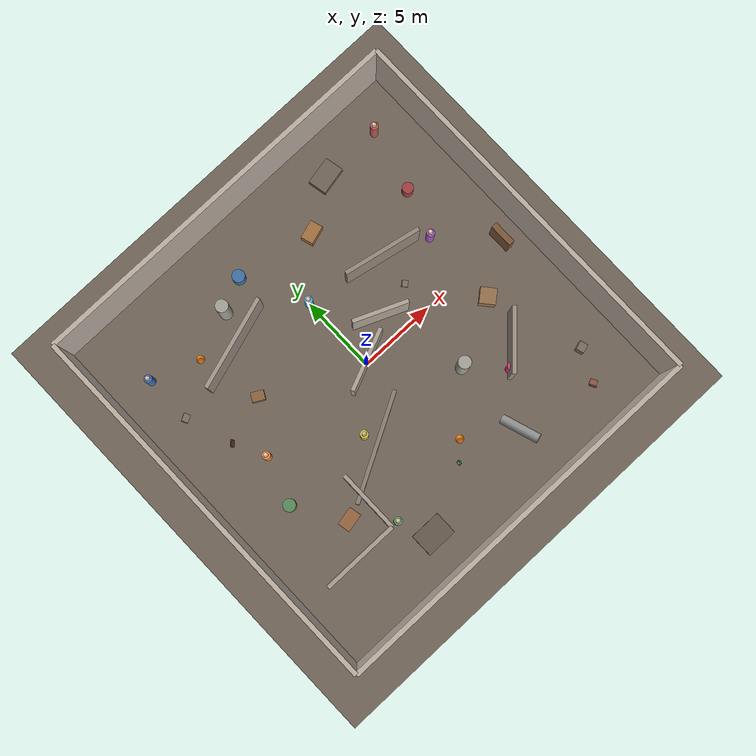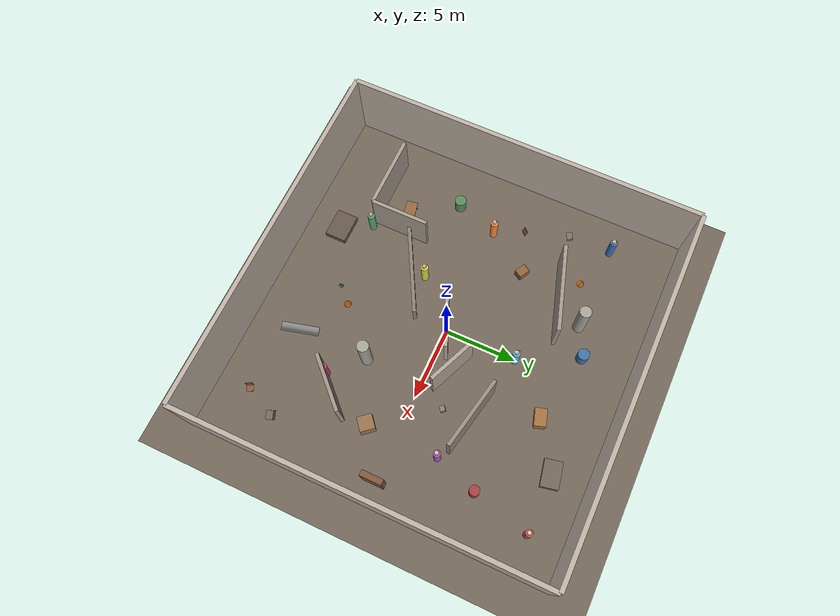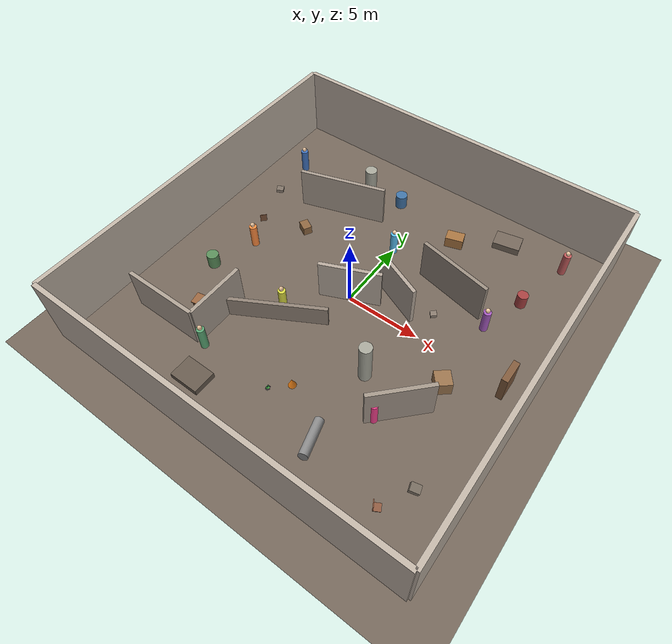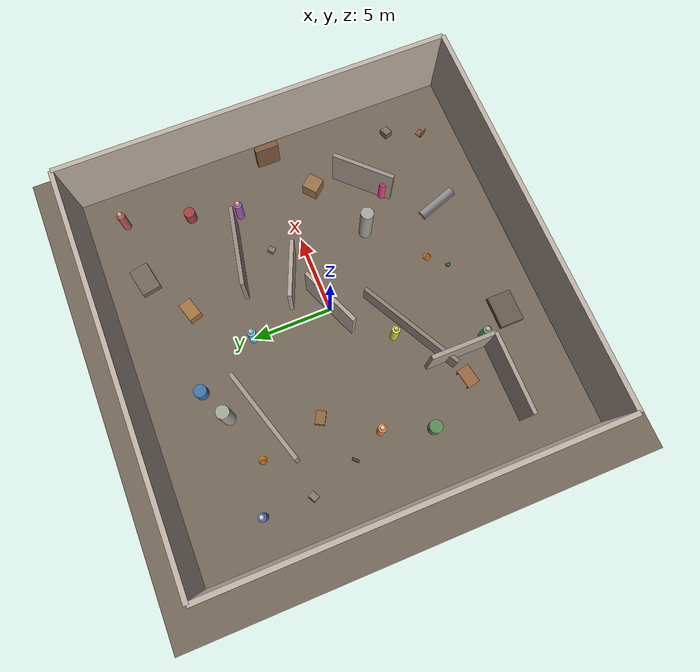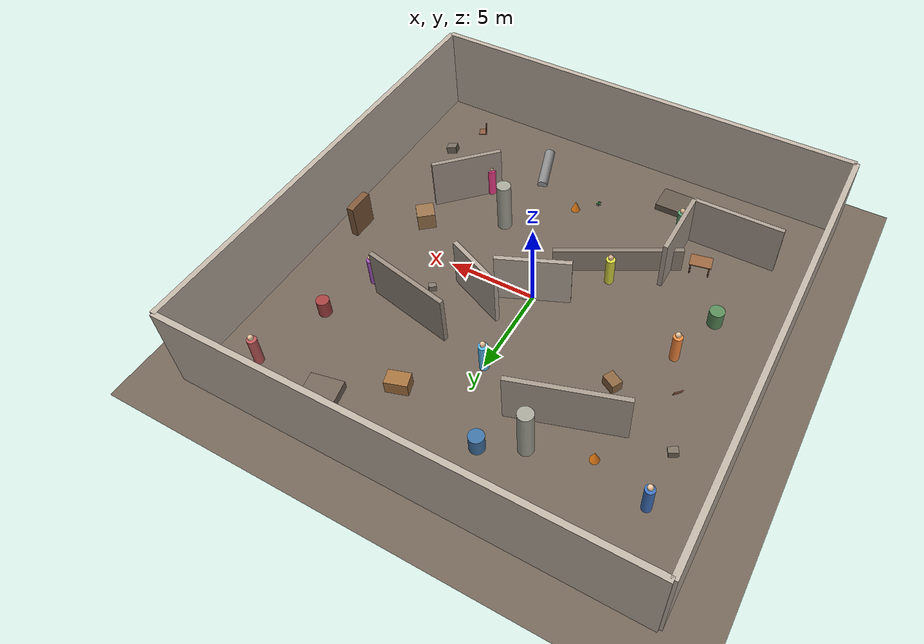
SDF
<?xml version="1.0" ?>
<sdf version="1.6">
  <world name="large_messy_room">
    <!-- Required plugins for Gazebo Sim -->
    <plugin filename="gz-sim-physics-system" name="gz::sim::systems::Physics"/>
    <plugin filename="gz-sim-user-commands-system" name="gz::sim::systems::UserCommands"/>
    <plugin filename="gz-sim-scene-broadcaster-system" name="gz::sim::systems::SceneBroadcaster"/>
    <plugin filename="gz-sim-sensors-system" name="gz::sim::systems::Sensors">
      <render_engine>ogre2</render_engine>
    </plugin>
    <plugin filename="gz-sim-contact-system" name="gz::sim::systems::Contact"/>

    <scene>
      <ambient>0.5 0.5 0.5 1</ambient>
      <background>0.3 0.3 0.4 1</background>
      <shadows>true</shadows>
    </scene>

    <light name="ceiling_light_1" type="point">
      <pose>0 0 4.5 0 0 0</pose>
      <diffuse>0.9 0.9 0.8 1</diffuse>
      <specular>0.3 0.3 0.3 1</specular>
      <attenuation>
        <range>30</range>
        <constant>0.3</constant>
        <linear>0.01</linear>
        <quadratic>0.001</quadratic>
      </attenuation>
      <cast_shadows>true</cast_shadows>
    </light>

    <light name="ceiling_light_2" type="point">
      <pose>8 8 4.5 0 0 0</pose>
      <diffuse>0.8 0.8 0.7 1</diffuse>
      <specular>0.2 0.2 0.2 1</specular>
      <attenuation>
        <range>25</range>
        <constant>0.3</constant>
        <linear>0.01</linear>
        <quadratic>0.001</quadratic>
      </attenuation>
    </light>

    <light name="ceiling_light_3" type="point">
      <pose>-8 -8 4.5 0 0 0</pose>
      <diffuse>0.8 0.8 0.7 1</diffuse>
      <specular>0.2 0.2 0.2 1</specular>
      <attenuation>
        <range>25</range>
        <constant>0.3</constant>
        <linear>0.01</linear>
        <quadratic>0.001</quadratic>
      </attenuation>
    </light>

    <physics type="ode">
      <max_step_size>0.001</max_step_size>
      <real_time_factor>1.0</real_time_factor>
      <real_time_update_rate>1000</real_time_update_rate>
    </physics>

    <!-- ==================== FLOOR ==================== -->
    <model name="floor">
      <static>true</static>
      <link name="link">
        <collision name="collision">
          <geometry>
            <plane>
              <normal>0 0 1</normal>
              <size>30 30</size>
            </plane>
          </geometry>
        </collision>
        <visual name="visual">
          <geometry>
            <plane>
              <normal>0 0 1</normal>
              <size>30 30</size>
            </plane>
          </geometry>
          <material>
            <ambient>0.4 0.35 0.3 1</ambient>
            <diffuse>0.45 0.4 0.35 1</diffuse>
            <specular>0.1 0.1 0.1 1</specular>
          </material>
        </visual>
      </link>
    </model>

    <!-- ==================== MAIN ROOM WALLS (25m x 25m) ==================== -->
    <!-- North Wall -->
    <model name="wall_north">
      <static>true</static>
      <link name="link">
        <pose>0 12.5 2.5 0 0 0</pose>
        <collision name="collision">
          <geometry>
            <box><size>25 0.3 5</size></box>
          </geometry>
        </collision>
        <visual name="visual">
          <geometry>
            <box><size>25 0.3 5</size></box>
          </geometry>
          <material>
            <ambient>0.7 0.65 0.6 1</ambient>
            <diffuse>0.75 0.7 0.65 1</diffuse>
          </material>
        </visual>
      </link>
    </model>

    <!-- South Wall -->
    <model name="wall_south">
      <static>true</static>
      <link name="link">
        <pose>0 -12.5 2.5 0 0 0</pose>
        <collision name="collision">
          <geometry>
            <box><size>25 0.3 5</size></box>
          </geometry>
        </collision>
        <visual name="visual">
          <geometry>
            <box><size>25 0.3 5</size></box>
          </geometry>
          <material>
            <ambient>0.7 0.65 0.6 1</ambient>
            <diffuse>0.75 0.7 0.65 1</diffuse>
          </material>
        </visual>
      </link>
    </model>

    <!-- East Wall -->
    <model name="wall_east">
      <static>true</static>
      <link name="link">
        <pose>12.5 0 2.5 0 0 0</pose>
        <collision name="collision">
          <geometry>
            <box><size>0.3 25 5</size></box>
          </geometry>
        </collision>
        <visual name="visual">
          <geometry>
            <box><size>0.3 25 5</size></box>
          </geometry>
          <material>
            <ambient>0.7 0.65 0.6 1</ambient>
            <diffuse>0.75 0.7 0.65 1</diffuse>
          </material>
        </visual>
      </link>
    </model>

    <!-- West Wall -->
    <model name="wall_west">
      <static>true</static>
      <link name="link">
        <pose>-12.5 0 2.5 0 0 0</pose>
        <collision name="collision">
          <geometry>
            <box><size>0.3 25 5</size></box>
          </geometry>
        </collision>
        <visual name="visual">
          <geometry>
            <box><size>0.3 25 5</size></box>
          </geometry>
          <material>
            <ambient>0.7 0.65 0.6 1</ambient>
            <diffuse>0.75 0.7 0.65 1</diffuse>
          </material>
        </visual>
      </link>
    </model>

    <!-- ==================== MESSY INTERNAL WALLS ==================== -->
    <!-- Partial wall 1 - angled -->
    <model name="messy_wall_1">
      <static>true</static>
      <link name="link">
        <pose>-5 6 1.5 0 0 0.3</pose>
        <collision name="collision">
          <geometry>
            <box><size>6 0.25 3</size></box>
          </geometry>
        </collision>
        <visual name="visual">
          <geometry>
            <box><size>6 0.25 3</size></box>
          </geometry>
          <material>
            <ambient>0.6 0.55 0.5 1</ambient>
            <diffuse>0.65 0.6 0.55 1</diffuse>
          </material>
        </visual>
      </link>
    </model>

    <!-- Partial wall 2 - broken section -->
    <model name="messy_wall_2">
      <static>true</static>
      <link name="link">
        <pose>5 4 1.5 0 0 -0.2</pose>
        <collision name="collision">
          <geometry>
            <box><size>5 0.25 3</size></box>
          </geometry>
        </collision>
        <visual name="visual">
          <geometry>
            <box><size>5 0.25 3</size></box>
          </geometry>
          <material>
            <ambient>0.55 0.5 0.45 1</ambient>
            <diffuse>0.6 0.55 0.5 1</diffuse>
          </material>
        </visual>
      </link>
    </model>

    <!-- Partial wall 3 - low wall -->
    <model name="messy_wall_3">
      <static>true</static>
      <link name="link">
        <pose>-3 -4 0.75 0 0 0.5</pose>
        <collision name="collision">
          <geometry>
            <box><size>7 0.25 1.5</size></box>
          </geometry>
        </collision>
        <visual name="visual">
          <geometry>
            <box><size>7 0.25 1.5</size></box>
          </geometry>
          <material>
            <ambient>0.5 0.45 0.4 1</ambient>
            <diffuse>0.55 0.5 0.45 1</diffuse>
          </material>
        </visual>
      </link>
    </model>

    <!-- Partial wall 4 -->
    <model name="messy_wall_4">
      <static>true</static>
      <link name="link">
        <pose>7 -5 1.5 0 0 0.8</pose>
        <collision name="collision">
          <geometry>
            <box><size>4 0.25 3</size></box>
          </geometry>
        </collision>
        <visual name="visual">
          <geometry>
            <box><size>4 0.25 3</size></box>
          </geometry>
          <material>
            <ambient>0.58 0.53 0.48 1</ambient>
            <diffuse>0.63 0.58 0.53 1</diffuse>
          </material>
        </visual>
      </link>
    </model>

    <!-- Partial wall 5 - L-shape part 1 -->
    <model name="messy_wall_5a">
      <static>true</static>
      <link name="link">
        <pose>-8 -8 1.5 0 0 0</pose>
        <collision name="collision">
          <geometry>
            <box><size>5 0.25 3</size></box>
          </geometry>
        </collision>
        <visual name="visual">
          <geometry>
            <box><size>5 0.25 3</size></box>
          </geometry>
          <material>
            <ambient>0.62 0.57 0.52 1</ambient>
            <diffuse>0.67 0.62 0.57 1</diffuse>
          </material>
        </visual>
      </link>
    </model>

    <!-- Partial wall 5 - L-shape part 2 -->
    <model name="messy_wall_5b">
      <static>true</static>
      <link name="link">
        <pose>-5.5 -6 1.5 0 0 1.57</pose>
        <collision name="collision">
          <geometry>
            <box><size>4 0.25 3</size></box>
          </geometry>
        </collision>
        <visual name="visual">
          <geometry>
            <box><size>4 0.25 3</size></box>
          </geometry>
          <material>
            <ambient>0.62 0.57 0.52 1</ambient>
            <diffuse>0.67 0.62 0.57 1</diffuse>
          </material>
        </visual>
      </link>
    </model>

    <!-- Messy wall 6 - zigzag section 1 -->
    <model name="messy_wall_6a">
      <static>true</static>
      <link name="link">
        <pose>0 0 1.5 0 0 0.4</pose>
        <collision name="collision">
          <geometry>
            <box><size>4 0.25 3</size></box>
          </geometry>
        </collision>
        <visual name="visual">
          <geometry>
            <box><size>4 0.25 3</size></box>
          </geometry>
          <material>
            <ambient>0.65 0.6 0.55 1</ambient>
            <diffuse>0.7 0.65 0.6 1</diffuse>
          </material>
        </visual>
      </link>
    </model>

    <!-- Messy wall 6 - zigzag section 2 -->
    <model name="messy_wall_6b">
      <static>true</static>
      <link name="link">
        <pose>2.5 1.5 1.5 0 0 -0.4</pose>
        <collision name="collision">
          <geometry>
            <box><size>3.5 0.25 3</size></box>
          </geometry>
        </collision>
        <visual name="visual">
          <geometry>
            <box><size>3.5 0.25 3</size></box>
          </geometry>
          <material>
            <ambient>0.65 0.6 0.55 1</ambient>
            <diffuse>0.7 0.65 0.6 1</diffuse>
          </material>
        </visual>
      </link>
    </model>

    <!-- ==================== OBSTACLE CLUTTER (MESSY ITEMS) ==================== -->
    <!-- Box obstacles -->
    <model name="box_obstacle_1">
      <static>true</static>
      <link name="link">
        <pose>3 8 0.4 0 0 0.3</pose>
        <collision name="collision">
          <geometry>
            <box><size>1.2 0.8 0.8</size></box>
          </geometry>
        </collision>
        <visual name="visual">
          <geometry>
            <box><size>1.2 0.8 0.8</size></box>
          </geometry>
          <material>
            <ambient>0.6 0.4 0.2 1</ambient>
            <diffuse>0.65 0.45 0.25 1</diffuse>
          </material>
        </visual>
      </link>
    </model>

    <model name="box_obstacle_2">
      <static>true</static>
      <link name="link">
        <pose>-6 3 0.3 0 0 -0.5</pose>
        <collision name="collision">
          <geometry>
            <box><size>0.8 0.6 0.6</size></box>
          </geometry>
        </collision>
        <visual name="visual">
          <geometry>
            <box><size>0.8 0.6 0.6</size></box>
          </geometry>
          <material>
            <ambient>0.5 0.35 0.2 1</ambient>
            <diffuse>0.55 0.4 0.25 1</diffuse>
          </material>
        </visual>
      </link>
    </model>

    <model name="box_obstacle_3">
      <static>true</static>
      <link name="link">
        <pose>8 -2 0.5 0 0 0.7</pose>
        <collision name="collision">
          <geometry>
            <box><size>1.0 1.0 1.0</size></box>
          </geometry>
        </collision>
        <visual name="visual">
          <geometry>
            <box><size>1.0 1.0 1.0</size></box>
          </geometry>
          <material>
            <ambient>0.55 0.4 0.25 1</ambient>
            <diffuse>0.6 0.45 0.3 1</diffuse>
          </material>
        </visual>
      </link>
    </model>

    <!-- Barrel obstacles -->
    <model name="barrel_1">
      <static>true</static>
      <link name="link">
        <pose>-2 9 0.5 0 0 0</pose>
        <collision name="collision">
          <geometry>
            <cylinder>
              <radius>0.4</radius>
              <length>1.0</length>
            </cylinder>
          </geometry>
        </collision>
        <visual name="visual">
          <geometry>
            <cylinder>
              <radius>0.4</radius>
              <length>1.0</length>
            </cylinder>
          </geometry>
          <material>
            <ambient>0.2 0.4 0.6 1</ambient>
            <diffuse>0.25 0.45 0.65 1</diffuse>
          </material>
        </visual>
      </link>
    </model>

    <model name="barrel_2">
      <static>true</static>
      <link name="link">
        <pose>9 6 0.5 0 0 0</pose>
        <collision name="collision">
          <geometry>
            <cylinder>
              <radius>0.35</radius>
              <length>1.0</length>
            </cylinder>
          </geometry>
        </collision>
        <visual name="visual">
          <geometry>
            <cylinder>
              <radius>0.35</radius>
              <length>1.0</length>
            </cylinder>
          </geometry>
          <material>
            <ambient>0.6 0.2 0.2 1</ambient>
            <diffuse>0.65 0.25 0.25 1</diffuse>
          </material>
        </visual>
      </link>
    </model>

    <model name="barrel_3">
      <static>true</static>
      <link name="link">
        <pose>-9 -3 0.5 0 0 0</pose>
        <collision name="collision">
          <geometry>
            <cylinder>
              <radius>0.4</radius>
              <length>1.0</length>
            </cylinder>
          </geometry>
        </collision>
        <visual name="visual">
          <geometry>
            <cylinder>
              <radius>0.4</radius>
              <length>1.0</length>
            </cylinder>
          </geometry>
          <material>
            <ambient>0.3 0.5 0.3 1</ambient>
            <diffuse>0.35 0.55 0.35 1</diffuse>
          </material>
        </visual>
      </link>
    </model>

    <!-- Debris piles -->
    <model name="debris_pile_1">
      <static>true</static>
      <link name="link">
        <pose>-4 -10 0.2 0 0 0</pose>
        <collision name="collision">
          <geometry>
            <box><size>2.0 1.5 0.4</size></box>
          </geometry>
        </collision>
        <visual name="visual">
          <geometry>
            <box><size>2.0 1.5 0.4</size></box>
          </geometry>
          <material>
            <ambient>0.35 0.3 0.25 1</ambient>
            <diffuse>0.4 0.35 0.3 1</diffuse>
          </material>
        </visual>
      </link>
    </model>

    <model name="debris_pile_2">
      <static>true</static>
      <link name="link">
        <pose>6 10 0.25 0 0 0.2</pose>
        <collision name="collision">
          <geometry>
            <box><size>1.8 1.2 0.5</size></box>
          </geometry>
        </collision>
        <visual name="visual">
          <geometry>
            <box><size>1.8 1.2 0.5</size></box>
          </geometry>
          <material>
            <ambient>0.4 0.35 0.3 1</ambient>
            <diffuse>0.45 0.4 0.35 1</diffuse>
          </material>
        </visual>
      </link>
    </model>

    <!-- Cones -->
    <model name="cone_1">
      <static>true</static>
      <link name="link">
        <pose>1 -7 0.3 0 0 0</pose>
        <collision name="collision">
          <geometry>
            <cone>
              <radius>0.25</radius>
              <length>0.6</length>
            </cone>
          </geometry>
        </collision>
        <visual name="visual">
          <geometry>
            <cone>
              <radius>0.25</radius>
              <length>0.6</length>
            </cone>
          </geometry>
          <material>
            <ambient>1.0 0.5 0.0 1</ambient>
            <diffuse>1.0 0.55 0.1 1</diffuse>
          </material>
        </visual>
      </link>
    </model>

    <model name="cone_2">
      <static>true</static>
      <link name="link">
        <pose>-7 7 0.3 0 0 0</pose>
        <collision name="collision">
          <geometry>
            <cone>
              <radius>0.25</radius>
              <length>0.6</length>
            </cone>
          </geometry>
        </collision>
        <visual name="visual">
          <geometry>
            <cone>
              <radius>0.25</radius>
              <length>0.6</length>
            </cone>
          </geometry>
          <material>
            <ambient>1.0 0.5 0.0 1</ambient>
            <diffuse>1.0 0.55 0.1 1</diffuse>
          </material>
        </visual>
      </link>
    </model>

    <!-- Fallen pillar -->
    <model name="fallen_pillar">
      <static>true</static>
      <link name="link">
        <pose>4 -9 0.3 1.4 0 0.3</pose>
        <collision name="collision">
          <geometry>
            <cylinder>
              <radius>0.3</radius>
              <length>2.5</length>
            </cylinder>
          </geometry>
        </collision>
        <visual name="visual">
          <geometry>
            <cylinder>
              <radius>0.3</radius>
              <length>2.5</length>
            </cylinder>
          </geometry>
          <material>
            <ambient>0.5 0.5 0.5 1</ambient>
            <diffuse>0.55 0.55 0.55 1</diffuse>
          </material>
        </visual>
      </link>
    </model>

    <!-- Small rubble blocks -->
    <model name="rubble_1">
      <static>true</static>
      <link name="link">
        <pose>-10 5 0.15 0.2 0.1 0.5</pose>
        <collision name="collision">
          <geometry>
            <box><size>0.5 0.4 0.3</size></box>
          </geometry>
        </collision>
        <visual name="visual">
          <geometry>
            <box><size>0.5 0.4 0.3</size></box>
          </geometry>
          <material>
            <ambient>0.45 0.4 0.35 1</ambient>
            <diffuse>0.5 0.45 0.4 1</diffuse>
          </material>
        </visual>
      </link>
    </model>

    <model name="rubble_2">
      <static>true</static>
      <link name="link">
        <pose>10 -8 0.2 0.1 0.2 0.3</pose>
        <collision name="collision">
          <geometry>
            <box><size>0.6 0.5 0.4</size></box>
          </geometry>
        </collision>
        <visual name="visual">
          <geometry>
            <box><size>0.6 0.5 0.4</size></box>
          </geometry>
          <material>
            <ambient>0.42 0.38 0.33 1</ambient>
            <diffuse>0.47 0.43 0.38 1</diffuse>
          </material>
        </visual>
      </link>
    </model>

    <model name="rubble_3">
      <static>true</static>
      <link name="link">
        <pose>5 2 0.15 0.15 -0.1 0.7</pose>
        <collision name="collision">
          <geometry>
            <box><size>0.4 0.35 0.3</size></box>
          </geometry>
        </collision>
        <visual name="visual">
          <geometry>
            <box><size>0.4 0.35 0.3</size></box>
          </geometry>
          <material>
            <ambient>0.48 0.43 0.38 1</ambient>
            <diffuse>0.53 0.48 0.43 1</diffuse>
          </material>
        </visual>
      </link>
    </model>

    <!-- ==================== STATIC HUMANS ==================== -->
    <!-- Standing person near wall -->
    <model name="human_static_1">
      <static>true</static>
      <pose>-10 8 0.85 0 0 0.5</pose>
      <link name="link">
        <collision name="collision">
          <geometry>
            <cylinder>
              <radius>0.25</radius>
              <length>1.7</length>
            </cylinder>
          </geometry>
        </collision>
        <visual name="body">
          <geometry>
            <cylinder>
              <radius>0.25</radius>
              <length>1.7</length>
            </cylinder>
          </geometry>
          <material>
            <ambient>0.2 0.4 0.7 1</ambient>
            <diffuse>0.25 0.45 0.75 1</diffuse>
          </material>
        </visual>
        <!-- Head -->
        <visual name="head">
          <pose>0 0 1.0 0 0 0</pose>
          <geometry>
            <sphere>
              <radius>0.15</radius>
            </sphere>
          </geometry>
          <material>
            <ambient>0.9 0.75 0.6 1</ambient>
            <diffuse>0.95 0.8 0.65 1</diffuse>
          </material>
        </visual>
      </link>
    </model>

    <!-- Person in corner -->
    <model name="human_static_2">
      <static>true</static>
      <pose>10 10 0.85 0 0 -0.8</pose>
      <link name="link">
        <collision name="collision">
          <geometry>
            <cylinder>
              <radius>0.25</radius>
              <length>1.7</length>
            </cylinder>
          </geometry>
        </collision>
        <visual name="body">
          <geometry>
            <cylinder>
              <radius>0.25</radius>
              <length>1.7</length>
            </cylinder>
          </geometry>
          <material>
            <ambient>0.7 0.3 0.3 1</ambient>
            <diffuse>0.75 0.35 0.35 1</diffuse>
          </material>
        </visual>
        <visual name="head">
          <pose>0 0 1.0 0 0 0</pose>
          <geometry>
            <sphere>
              <radius>0.15</radius>
            </sphere>
          </geometry>
          <material>
            <ambient>0.9 0.75 0.6 1</ambient>
            <diffuse>0.95 0.8 0.65 1</diffuse>
          </material>
        </visual>
      </link>
    </model>

    <!-- Person near debris -->
    <model name="human_static_3">
      <static>true</static>
      <pose>-5 -8 0.85 0 0 1.2</pose>
      <link name="link">
        <collision name="collision">
          <geometry>
            <cylinder>
              <radius>0.25</radius>
              <length>1.7</length>
            </cylinder>
          </geometry>
        </collision>
        <visual name="body">
          <geometry>
            <cylinder>
              <radius>0.25</radius>
              <length>1.7</length>
            </cylinder>
          </geometry>
          <material>
            <ambient>0.3 0.6 0.4 1</ambient>
            <diffuse>0.35 0.65 0.45 1</diffuse>
          </material>
        </visual>
        <visual name="head">
          <pose>0 0 1.0 0 0 0</pose>
          <geometry>
            <sphere>
              <radius>0.15</radius>
            </sphere>
          </geometry>
          <material>
            <ambient>0.85 0.7 0.55 1</ambient>
            <diffuse>0.9 0.75 0.6 1</diffuse>
          </material>
        </visual>
      </link>
    </model>

    <!-- ==================== MOVING HUMANS (controlled via ROS) ==================== -->
    <!-- Moving person 1 - patrols horizontally -->
    <model name="human_moving_1">
      <static>false</static>
      <pose>-8 0 0.85 0 0 0</pose>
      <link name="link">
        <inertial>
          <mass>70.0</mass>
          <inertia>
            <ixx>2</ixx>
            <iyy>2</iyy>
            <izz>0.5</izz>
          </inertia>
        </inertial>
        <collision name="collision">
          <geometry>
            <cylinder>
              <radius>0.25</radius>
              <length>1.7</length>
            </cylinder>
          </geometry>
        </collision>
        <visual name="body">
          <geometry>
            <cylinder>
              <radius>0.25</radius>
              <length>1.7</length>
            </cylinder>
          </geometry>
          <material>
            <ambient>1.0 0.5 0.2 1</ambient>
            <diffuse>1.0 0.55 0.25 1</diffuse>
          </material>
        </visual>
        <visual name="head">
          <pose>0 0 1.0 0 0 0</pose>
          <geometry>
            <sphere>
              <radius>0.15</radius>
            </sphere>
          </geometry>
          <material>
            <ambient>0.9 0.75 0.6 1</ambient>
            <diffuse>0.95 0.8 0.65 1</diffuse>
          </material>
        </visual>
      </link>
    </model>

    <!-- Moving person 2 - patrols vertically -->
    <model name="human_moving_2">
      <static>false</static>
      <pose>6 -6 0.85 0 0 1.57</pose>
      <link name="link">
        <inertial>
          <mass>65.0</mass>
          <inertia>
            <ixx>2</ixx>
            <iyy>2</iyy>
            <izz>0.5</izz>
          </inertia>
        </inertial>
        <collision name="collision">
          <geometry>
            <cylinder>
              <radius>0.25</radius>
              <length>1.7</length>
            </cylinder>
          </geometry>
        </collision>
        <visual name="body">
          <geometry>
            <cylinder>
              <radius>0.25</radius>
              <length>1.7</length>
            </cylinder>
          </geometry>
          <material>
            <ambient>0.9 0.2 0.5 1</ambient>
            <diffuse>0.95 0.25 0.55 1</diffuse>
          </material>
        </visual>
        <visual name="head">
          <pose>0 0 1.0 0 0 0</pose>
          <geometry>
            <sphere>
              <radius>0.15</radius>
            </sphere>
          </geometry>
          <material>
            <ambient>0.85 0.7 0.55 1</ambient>
            <diffuse>0.9 0.75 0.6 1</diffuse>
          </material>
        </visual>
      </link>
    </model>

    <!-- Moving person 3 - random walker -->
    <model name="human_moving_3">
      <static>false</static>
      <pose>0 5 0.85 0 0 0</pose>
      <link name="link">
        <inertial>
          <mass>75.0</mass>
          <inertia>
            <ixx>2</ixx>
            <iyy>2</iyy>
            <izz>0.5</izz>
          </inertia>
        </inertial>
        <collision name="collision">
          <geometry>
            <cylinder>
              <radius>0.25</radius>
              <length>1.7</length>
            </cylinder>
          </geometry>
        </collision>
        <visual name="body">
          <geometry>
            <cylinder>
              <radius>0.25</radius>
              <length>1.7</length>
            </cylinder>
          </geometry>
          <material>
            <ambient>0.3 0.7 0.9 1</ambient>
            <diffuse>0.35 0.75 0.95 1</diffuse>
          </material>
        </visual>
        <visual name="head">
          <pose>0 0 1.0 0 0 0</pose>
          <geometry>
            <sphere>
              <radius>0.15</radius>
            </sphere>
          </geometry>
          <material>
            <ambient>0.9 0.75 0.6 1</ambient>
            <diffuse>0.95 0.8 0.65 1</diffuse>
          </material>
        </visual>
      </link>
    </model>

    <!-- Moving person 4 - diagonal walker -->
    <model name="human_moving_4">
      <static>false</static>
      <pose>-3 -3 0.85 0 0 0.78</pose>
      <link name="link">
        <inertial>
          <mass>68.0</mass>
          <inertia>
            <ixx>2</ixx>
            <iyy>2</iyy>
            <izz>0.5</izz>
          </inertia>
        </inertial>
        <collision name="collision">
          <geometry>
            <cylinder>
              <radius>0.25</radius>
              <length>1.7</length>
            </cylinder>
          </geometry>
        </collision>
        <visual name="body">
          <geometry>
            <cylinder>
              <radius>0.25</radius>
              <length>1.7</length>
            </cylinder>
          </geometry>
          <material>
            <ambient>0.8 0.8 0.2 1</ambient>
            <diffuse>0.85 0.85 0.25 1</diffuse>
          </material>
        </visual>
        <visual name="head">
          <pose>0 0 1.0 0 0 0</pose>
          <geometry>
            <sphere>
              <radius>0.15</radius>
            </sphere>
          </geometry>
          <material>
            <ambient>0.85 0.7 0.55 1</ambient>
            <diffuse>0.9 0.75 0.6 1</diffuse>
          </material>
        </visual>
      </link>
    </model>

    <!-- Moving person 5 - circular walker -->
    <model name="human_moving_5">
      <static>false</static>
      <pose>8 3 0.85 0 0 -1.0</pose>
      <link name="link">
        <inertial>
          <mass>72.0</mass>
          <inertia>
            <ixx>2</ixx>
            <iyy>2</iyy>
            <izz>0.5</izz>
          </inertia>
        </inertial>
        <collision name="collision">
          <geometry>
            <cylinder>
              <radius>0.25</radius>
              <length>1.7</length>
            </cylinder>
          </geometry>
        </collision>
        <visual name="body">
          <geometry>
            <cylinder>
              <radius>0.25</radius>
              <length>1.7</length>
            </cylinder>
          </geometry>
          <material>
            <ambient>0.6 0.3 0.7 1</ambient>
            <diffuse>0.65 0.35 0.75 1</diffuse>
          </material>
        </visual>
        <visual name="head">
          <pose>0 0 1.0 0 0 0</pose>
          <geometry>
            <sphere>
              <radius>0.15</radius>
            </sphere>
          </geometry>
          <material>
            <ambient>0.9 0.75 0.6 1</ambient>
            <diffuse>0.95 0.8 0.65 1</diffuse>
          </material>
        </visual>
      </link>
    </model>

    <!-- ==================== TURTLEBOT3 ROVER ==================== -->
    <model name="turtlebot3_rover">
      <static>false</static>
      <pose>0 -8 0.0 0 0 1.5708</pose>

      <!-- Base link (chassis) -->
      <link name="base_footprint">
        <pose>0 0 0.01 0 0 0</pose>
      </link>

      <link name="base_link">
        <pose>0 0 0.08 0 0 0</pose>
        <inertial>
          <mass>1.5</mass>
          <inertia>
            <ixx>0.01</ixx>
            <iyy>0.01</iyy>
            <izz>0.01</izz>
          </inertia>
        </inertial>
        <collision name="base_collision">
          <geometry>
            <box>
              <size>0.28 0.18 0.08</size>
            </box>
          </geometry>
        </collision>
        <visual name="base_visual">
          <geometry>
            <box>
              <size>0.28 0.18 0.08</size>
            </box>
          </geometry>
          <material>
            <ambient>0.1 0.1 0.1 1</ambient>
            <diffuse>0.15 0.15 0.15 1</diffuse>
          </material>
        </visual>
      </link>

      <!-- Top plate -->
      <link name="top_plate">
        <pose>0 0 0.14 0 0 0</pose>
        <inertial>
          <mass>0.3</mass>
          <inertia>
            <ixx>0.002</ixx>
            <iyy>0.002</iyy>
            <izz>0.002</izz>
          </inertia>
        </inertial>
        <collision name="top_plate_collision">
          <geometry>
            <cylinder>
              <radius>0.10</radius>
              <length>0.02</length>
            </cylinder>
          </geometry>
        </collision>
        <visual name="top_plate_visual">
          <geometry>
            <cylinder>
              <radius>0.10</radius>
              <length>0.02</length>
            </cylinder>
          </geometry>
          <material>
            <ambient>0.2 0.7 0.2 1</ambient>
            <diffuse>0.25 0.75 0.25 1</diffuse>
          </material>
        </visual>
      </link>

      <!-- Left wheel -->
      <link name="wheel_left">
        <pose>0 0.12 0.04 -1.5708 0 0</pose>
        <inertial>
          <mass>0.15</mass>
          <inertia>
            <ixx>0.0001</ixx>
            <iyy>0.0001</iyy>
            <izz>0.0001</izz>
          </inertia>
        </inertial>
        <collision name="wheel_left_collision">
          <geometry>
            <cylinder>
              <radius>0.04</radius>
              <length>0.025</length>
            </cylinder>
          </geometry>
          <surface>
            <friction>
              <ode>
                <mu>1.0</mu>
                <mu2>1.0</mu2>
              </ode>
            </friction>
          </surface>
        </collision>
        <visual name="wheel_left_visual">
          <geometry>
            <cylinder>
              <radius>0.04</radius>
              <length>0.025</length>
            </cylinder>
          </geometry>
          <material>
            <ambient>0.1 0.1 0.1 1</ambient>
            <diffuse>0.15 0.15 0.15 1</diffuse>
          </material>
        </visual>
      </link>

      <!-- Right wheel -->
      <link name="wheel_right">
        <pose>0 -0.12 0.04 -1.5708 0 0</pose>
        <inertial>
          <mass>0.15</mass>
          <inertia>
            <ixx>0.0001</ixx>
            <iyy>0.0001</iyy>
            <izz>0.0001</izz>
          </inertia>
        </inertial>
        <collision name="wheel_right_collision">
          <geometry>
            <cylinder>
              <radius>0.04</radius>
              <length>0.025</length>
            </cylinder>
          </geometry>
          <surface>
            <friction>
              <ode>
                <mu>1.0</mu>
                <mu2>1.0</mu2>
              </ode>
            </friction>
          </surface>
        </collision>
        <visual name="wheel_right_visual">
          <geometry>
            <cylinder>
              <radius>0.04</radius>
              <length>0.025</length>
            </cylinder>
          </geometry>
          <material>
            <ambient>0.1 0.1 0.1 1</ambient>
            <diffuse>0.15 0.15 0.15 1</diffuse>
          </material>
        </visual>
      </link>

      <!-- Caster wheel (front) -->
      <link name="caster_front">
        <pose>0.1 0 0.015 0 0 0</pose>
        <inertial>
          <mass>0.05</mass>
          <inertia>
            <ixx>0.00001</ixx>
            <iyy>0.00001</iyy>
            <izz>0.00001</izz>
          </inertia>
        </inertial>
        <collision name="caster_front_collision">
          <geometry>
            <sphere>
              <radius>0.015</radius>
            </sphere>
          </geometry>
          <surface>
            <friction>
              <ode>
                <mu>0.0</mu>
                <mu2>0.0</mu2>
              </ode>
            </friction>
          </surface>
        </collision>
        <visual name="caster_front_visual">
          <geometry>
            <sphere>
              <radius>0.015</radius>
            </sphere>
          </geometry>
          <material>
            <ambient>0.3 0.3 0.3 1</ambient>
            <diffuse>0.35 0.35 0.35 1</diffuse>
          </material>
        </visual>
      </link>

      <!-- Caster wheel (back) -->
      <link name="caster_back">
        <pose>-0.1 0 0.015 0 0 0</pose>
        <inertial>
          <mass>0.05</mass>
          <inertia>
            <ixx>0.00001</ixx>
            <iyy>0.00001</iyy>
            <izz>0.00001</izz>
          </inertia>
        </inertial>
        <collision name="caster_back_collision">
          <geometry>
            <sphere>
              <radius>0.015</radius>
            </sphere>
          </geometry>
          <surface>
            <friction>
              <ode>
                <mu>0.0</mu>
                <mu2>0.0</mu2>
              </ode>
            </friction>
          </surface>
        </collision>
        <visual name="caster_back_visual">
          <geometry>
            <sphere>
              <radius>0.015</radius>
            </sphere>
          </geometry>
          <material>
            <ambient>0.3 0.3 0.3 1</ambient>
            <diffuse>0.35 0.35 0.35 1</diffuse>
          </material>
        </visual>
      </link>

      <!-- LiDAR sensor mount -->
      <link name="lidar_link">
        <pose>0 0 0.18 0 0 0</pose>
        <inertial>
          <mass>0.2</mass>
          <inertia>
            <ixx>0.001</ixx>
            <iyy>0.001</iyy>
            <izz>0.001</izz>
          </inertia>
        </inertial>
        <collision name="lidar_collision">
          <geometry>
            <cylinder>
              <radius>0.04</radius>
              <length>0.04</length>
            </cylinder>
          </geometry>
        </collision>
        <visual name="lidar_visual">
          <geometry>
            <cylinder>
              <radius>0.04</radius>
              <length>0.04</length>
            </cylinder>
          </geometry>
          <material>
            <ambient>0.2 0.2 0.2 1</ambient>
            <diffuse>0.25 0.25 0.25 1</diffuse>
          </material>
        </visual>
        <sensor name="lidar" type="gpu_lidar">
          <always_on>true</always_on>
          <visualize>true</visualize>
          <update_rate>10</update_rate>
          <topic>scan</topic>
          <gz_frame_id>lidar_link</gz_frame_id>
          <lidar>
            <scan>
              <horizontal>
                <samples>360</samples>
                <resolution>1</resolution>
                <min_angle>-3.14159</min_angle>
                <max_angle>3.14159</max_angle>
              </horizontal>
            </scan>
            <range>
              <min>0.12</min>
              <max>12.0</max>
              <resolution>0.01</resolution>
            </range>
            <noise>
              <type>gaussian</type>
              <mean>0.0</mean>
              <stddev>0.01</stddev>
            </noise>
          </lidar>
        </sensor>
      </link>

      <!-- 360-degree Camera mount -->
      <link name="camera_link">
        <pose>0 0 0.22 0 0 0</pose>
        <inertial>
          <mass>0.1</mass>
          <inertia>
            <ixx>0.0001</ixx>
            <iyy>0.0001</iyy>
            <izz>0.0001</izz>
          </inertia>
        </inertial>
        <collision name="camera_collision">
          <geometry>
            <sphere>
              <radius>0.02</radius>
            </sphere>
          </geometry>
        </collision>
        <visual name="camera_visual">
          <geometry>
            <sphere>
              <radius>0.02</radius>
            </sphere>
          </geometry>
          <material>
            <ambient>0.1 0.1 0.8 1</ambient>
            <diffuse>0.15 0.15 0.85 1</diffuse>
          </material>
        </visual>
        <!-- Front camera -->
        <sensor name="camera_front" type="camera">
          <always_on>true</always_on>
          <update_rate>15</update_rate>
          <topic>camera/front/image</topic>
          <camera>
            <horizontal_fov>1.57</horizontal_fov>
            <image>
              <width>640</width>
              <height>480</height>
              <format>R8G8B8</format>
            </image>
            <clip>
              <near>0.1</near>
              <far>15.0</far>
            </clip>
          </camera>
        </sensor>
        <!-- Right camera -->
        <sensor name="camera_right" type="camera">
          <pose>0 0 0 0 0 -1.5708</pose>
          <always_on>true</always_on>
          <update_rate>15</update_rate>
          <topic>camera/right/image</topic>
          <camera>
            <horizontal_fov>1.57</horizontal_fov>
            <image>
              <width>640</width>
              <height>480</height>
              <format>R8G8B8</format>
            </image>
            <clip>
              <near>0.1</near>
              <far>15.0</far>
            </clip>
          </camera>
        </sensor>
        <!-- Back camera -->
        <sensor name="camera_back" type="camera">
          <pose>0 0 0 0 0 3.14159</pose>
          <always_on>true</always_on>
          <update_rate>15</update_rate>
          <topic>camera/back/image</topic>
          <camera>
            <horizontal_fov>1.57</horizontal_fov>
            <image>
              <width>640</width>
              <height>480</height>
              <format>R8G8B8</format>
            </image>
            <clip>
              <near>0.1</near>
              <far>15.0</far>
            </clip>
          </camera>
        </sensor>
        <!-- Left camera -->
        <sensor name="camera_left" type="camera">
          <pose>0 0 0 0 0 1.5708</pose>
          <always_on>true</always_on>
          <update_rate>15</update_rate>
          <topic>camera/left/image</topic>
          <camera>
            <horizontal_fov>1.57</horizontal_fov>
            <image>
              <width>640</width>
              <height>480</height>
              <format>R8G8B8</format>
            </image>
            <clip>
              <near>0.1</near>
              <far>15.0</far>
            </clip>
          </camera>
        </sensor>
      </link>

      <!-- Joints -->
      <joint name="base_joint" type="fixed">
        <parent>base_footprint</parent>
        <child>base_link</child>
      </joint>

      <joint name="top_plate_joint" type="fixed">
        <parent>base_link</parent>
        <child>top_plate</child>
      </joint>

      <joint name="wheel_left_joint" type="revolute">
        <parent>base_link</parent>
        <child>wheel_left</child>
        <axis>
          <xyz>0 0 1</xyz>
          <limit>
            <lower>-1e16</lower>
            <upper>1e16</upper>
          </limit>
        </axis>
      </joint>

      <joint name="wheel_right_joint" type="revolute">
        <parent>base_link</parent>
        <child>wheel_right</child>
        <axis>
          <xyz>0 0 1</xyz>
          <limit>
            <lower>-1e16</lower>
            <upper>1e16</upper>
          </limit>
        </axis>
      </joint>

      <joint name="caster_front_joint" type="ball">
        <parent>base_link</parent>
        <child>caster_front</child>
      </joint>

      <joint name="caster_back_joint" type="ball">
        <parent>base_link</parent>
        <child>caster_back</child>
      </joint>

      <joint name="lidar_joint" type="fixed">
        <parent>top_plate</parent>
        <child>lidar_link</child>
      </joint>

      <joint name="camera_joint" type="fixed">
        <parent>lidar_link</parent>
        <child>camera_link</child>
      </joint>

      <!-- Differential drive plugin for Gazebo Sim -->
      <plugin filename="gz-sim-diff-drive-system" name="gz::sim::systems::DiffDrive">
        <left_joint>wheel_left_joint</left_joint>
        <right_joint>wheel_right_joint</right_joint>
        <wheel_separation>0.24</wheel_separation>
        <wheel_radius>0.04</wheel_radius>
        <max_linear_acceleration>1.0</max_linear_acceleration>
        <topic>cmd_vel</topic>
        <odom_topic>odom</odom_topic>
        <frame_id>odom</frame_id>
        <child_frame_id>base_footprint</child_frame_id>
        <odom_publish_frequency>30</odom_publish_frequency>
      </plugin>
    </model>

    <!-- ==================== ADDITIONAL FURNITURE/OBSTACLES ==================== -->
    <!-- Table 1 -->
    <model name="table_1">
      <static>true</static>
      <pose>-7 -6 0 0 0 0.2</pose>
      <link name="table_top">
        <pose>0 0 0.75 0 0 0</pose>
        <collision name="collision">
          <geometry>
            <box><size>1.2 0.8 0.05</size></box>
          </geometry>
        </collision>
        <visual name="visual">
          <geometry>
            <box><size>1.2 0.8 0.05</size></box>
          </geometry>
          <material>
            <ambient>0.55 0.35 0.2 1</ambient>
            <diffuse>0.6 0.4 0.25 1</diffuse>
          </material>
        </visual>
      </link>
      <link name="leg1">
        <pose>0.5 0.3 0.375 0 0 0</pose>
        <collision name="collision">
          <geometry>
            <cylinder><radius>0.04</radius><length>0.75</length></cylinder>
          </geometry>
        </collision>
        <visual name="visual">
          <geometry>
            <cylinder><radius>0.04</radius><length>0.75</length></cylinder>
          </geometry>
          <material>
            <ambient>0.4 0.25 0.15 1</ambient>
            <diffuse>0.45 0.3 0.2 1</diffuse>
          </material>
        </visual>
      </link>
      <link name="leg2">
        <pose>-0.5 0.3 0.375 0 0 0</pose>
        <collision name="collision">
          <geometry>
            <cylinder><radius>0.04</radius><length>0.75</length></cylinder>
          </geometry>
        </collision>
        <visual name="visual">
          <geometry>
            <cylinder><radius>0.04</radius><length>0.75</length></cylinder>
          </geometry>
          <material>
            <ambient>0.4 0.25 0.15 1</ambient>
            <diffuse>0.45 0.3 0.2 1</diffuse>
          </material>
        </visual>
      </link>
      <link name="leg3">
        <pose>0.5 -0.3 0.375 0 0 0</pose>
        <collision name="collision">
          <geometry>
            <cylinder><radius>0.04</radius><length>0.75</length></cylinder>
          </geometry>
        </collision>
        <visual name="visual">
          <geometry>
            <cylinder><radius>0.04</radius><length>0.75</length></cylinder>
          </geometry>
          <material>
            <ambient>0.4 0.25 0.15 1</ambient>
            <diffuse>0.45 0.3 0.2 1</diffuse>
          </material>
        </visual>
      </link>
      <link name="leg4">
        <pose>-0.5 -0.3 0.375 0 0 0</pose>
        <collision name="collision">
          <geometry>
            <cylinder><radius>0.04</radius><length>0.75</length></cylinder>
          </geometry>
        </collision>
        <visual name="visual">
          <geometry>
            <cylinder><radius>0.04</radius><length>0.75</length></cylinder>
          </geometry>
          <material>
            <ambient>0.4 0.25 0.15 1</ambient>
            <diffuse>0.45 0.3 0.2 1</diffuse>
          </material>
        </visual>
      </link>
    </model>

    <!-- Chair 1 -->
    <model name="chair_1">
      <static>true</static>
      <pose>9 -10 0 0 0 0.5</pose>
      <link name="seat">
        <pose>0 0 0.45 0 0 0</pose>
        <collision name="collision">
          <geometry>
            <box><size>0.45 0.45 0.05</size></box>
          </geometry>
        </collision>
        <visual name="visual">
          <geometry>
            <box><size>0.45 0.45 0.05</size></box>
          </geometry>
          <material>
            <ambient>0.5 0.3 0.2 1</ambient>
            <diffuse>0.55 0.35 0.25 1</diffuse>
          </material>
        </visual>
      </link>
      <link name="back">
        <pose>-0.2 0 0.7 0 0 0</pose>
        <collision name="collision">
          <geometry>
            <box><size>0.05 0.45 0.5</size></box>
          </geometry>
        </collision>
        <visual name="visual">
          <geometry>
            <box><size>0.05 0.45 0.5</size></box>
          </geometry>
          <material>
            <ambient>0.5 0.3 0.2 1</ambient>
            <diffuse>0.55 0.35 0.25 1</diffuse>
          </material>
        </visual>
      </link>
    </model>

    <!-- Chair 2 (knocked over) -->
    <model name="chair_2_fallen">
      <static>true</static>
      <pose>-9 2 0.25 1.2 0 0.8</pose>
      <link name="seat">
        <collision name="collision">
          <geometry>
            <box><size>0.45 0.45 0.05</size></box>
          </geometry>
        </collision>
        <visual name="visual">
          <geometry>
            <box><size>0.45 0.45 0.05</size></box>
          </geometry>
          <material>
            <ambient>0.45 0.28 0.18 1</ambient>
            <diffuse>0.5 0.33 0.23 1</diffuse>
          </material>
        </visual>
      </link>
    </model>

    <!-- Bookshelf -->
    <model name="bookshelf">
      <static>true</static>
      <pose>11 0 0 0 0 0</pose>
      <link name="frame">
        <pose>0 0 1.0 0 0 0</pose>
        <collision name="collision">
          <geometry>
            <box><size>0.4 1.5 2.0</size></box>
          </geometry>
        </collision>
        <visual name="visual">
          <geometry>
            <box><size>0.4 1.5 2.0</size></box>
          </geometry>
          <material>
            <ambient>0.45 0.3 0.18 1</ambient>
            <diffuse>0.5 0.35 0.23 1</diffuse>
          </material>
        </visual>
      </link>
    </model>

    <!-- Pillar 1 -->
    <model name="pillar_1">
      <static>true</static>
      <link name="link">
        <pose>-4 8 1.5 0 0 0</pose>
        <collision name="collision">
          <geometry>
            <cylinder>
              <radius>0.4</radius>
              <length>3</length>
            </cylinder>
          </geometry>
        </collision>
        <visual name="visual">
          <geometry>
            <cylinder>
              <radius>0.4</radius>
              <length>3</length>
            </cylinder>
          </geometry>
          <material>
            <ambient>0.6 0.6 0.55 1</ambient>
            <diffuse>0.65 0.65 0.6 1</diffuse>
          </material>
        </visual>
      </link>
    </model>

    <!-- Pillar 2 -->
    <model name="pillar_2">
      <static>true</static>
      <link name="link">
        <pose>4 -4 1.5 0 0 0</pose>
        <collision name="collision">
          <geometry>
            <cylinder>
              <radius>0.4</radius>
              <length>3</length>
            </cylinder>
          </geometry>
        </collision>
        <visual name="visual">
          <geometry>
            <cylinder>
              <radius>0.4</radius>
              <length>3</length>
            </cylinder>
          </geometry>
          <material>
            <ambient>0.6 0.6 0.55 1</ambient>
            <diffuse>0.65 0.65 0.6 1</diffuse>
          </material>
        </visual>
      </link>
    </model>

  </world>
</sdf>
